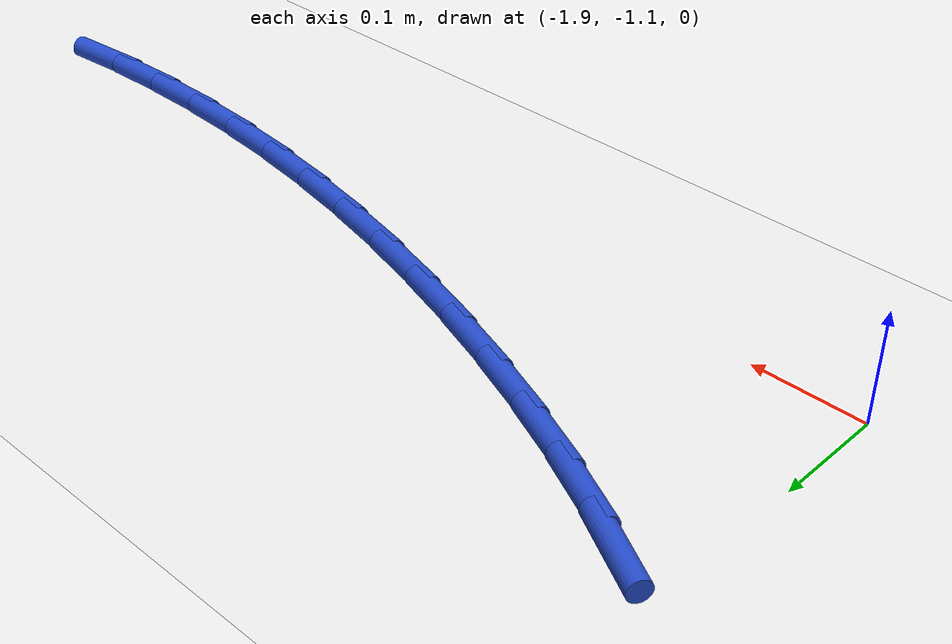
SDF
<sdf version="1.6">
 <world name="default">
  <model name="ground_plane">
   <static>1</static>
   <link name="link">
    <collision name="collision">
     <geometry><plane><normal>0 0 1</normal><size>100 100</size></plane></geometry>
     <surface><friction><ode><mu>100</mu><mu2>50</mu2></ode></friction></surface>
    </collision>
    <visual name="visual">
     <cast_shadows>0</cast_shadows>
     <geometry><plane><normal>0 0 1</normal><size>100 100</size></plane></geometry>
     <material>
      <script><uri>file://media/materials/scripts/gazebo.material</uri><name>Gazebo/WhiteGlow</name></script>
     </material>
    </visual>
   </link>
  </model>
  <model name="line">
   <link name="link_78">
    <pose>-1.8560114140258257 -0.8668475398187657 0.01 0 1.57 -0.5089625837110645</pose>
    <collision name="collision">
     <geometry><cylinder><radius>0.01</radius><length>0.08</length></cylinder></geometry>
    </collision>
    <visual name="visual">
     <material>
      <script><name>Gazebo/Blue</name><uri>file://media/materials/scripts/gazebo.material</uri></script>
     </material>
     <geometry><cylinder><radius>0.01</radius><length>0.08</length></cylinder></geometry>
    </visual>
   </link>
   <link name="link_79">
    <pose>-1.8049113757079878 -0.8953612334348058 0.01 0 1.57 -0.4563625777665876</pose>
    <collision name="collision">
     <geometry><cylinder><radius>0.01</radius><length>0.08</length></cylinder></geometry>
    </collision>
    <visual name="visual">
     <material>
      <script><name>Gazebo/Blue</name><uri>file://media/materials/scripts/gazebo.material</uri></script>
     </material>
     <geometry><cylinder><radius>0.01</radius><length>0.08</length></cylinder></geometry>
    </visual>
   </link>
   <link name="link_80">
    <pose>-1.7522824186661543 -0.9211981884001994 0.01 0 1.57 -0.40992676793087934</pose>
    <collision name="collision">
     <geometry><cylinder><radius>0.01</radius><length>0.08</length></cylinder></geometry>
    </collision>
    <visual name="visual">
     <material>
      <script><name>Gazebo/Blue</name><uri>file://media/materials/scripts/gazebo.material</uri></script>
     </material>
     <geometry><cylinder><radius>0.01</radius><length>0.08</length></cylinder></geometry>
    </visual>
   </link>
   <link name="link_81">
    <pose>-1.6983915308016853 -0.9446161579992518 0.01 0 1.57 -0.3694303202041057</pose>
    <collision name="collision">
     <geometry><cylinder><radius>0.01</radius><length>0.08</length></cylinder></geometry>
    </collision>
    <visual name="visual">
     <material>
      <script><name>Gazebo/Blue</name><uri>file://media/materials/scripts/gazebo.material</uri></script>
     </material>
     <geometry><cylinder><radius>0.01</radius><length>0.08</length></cylinder></geometry>
    </visual>
   </link>
   <link name="link_82">
    <pose>-1.6435038117593181 -0.965869117807244 0.01 0 1.57 -0.33199034544797357</pose>
    <collision name="collision">
     <geometry><cylinder><radius>0.01</radius><length>0.08</length></cylinder></geometry>
    </collision>
    <visual name="visual">
     <material>
      <script><name>Gazebo/Blue</name><uri>file://media/materials/scripts/gazebo.material</uri></script>
     </material>
     <geometry><cylinder><radius>0.01</radius><length>0.08</length></cylinder></geometry>
    </visual>
   </link>
   <link name="link_83">
    <pose>-1.5878131121656374 -0.9850685002432575 0.01 0 1.57 -0.29401201065530425</pose>
    <collision name="collision">
     <geometry><cylinder><radius>0.01</radius><length>0.08</length></cylinder></geometry>
    </collision>
    <visual name="visual">
     <material>
      <script><name>Gazebo/Blue</name><uri>file://media/materials/scripts/gazebo.material</uri></script>
     </material>
     <geometry><cylinder><radius>0.01</radius><length>0.08</length></cylinder></geometry>
    </visual>
   </link>
   <link name="link_84">
    <pose>-1.5314219565056675 -1.002143027609104 0.01 0 1.57 -0.2551519863277536</pose>
    <collision name="collision">
     <geometry><cylinder><radius>0.01</radius><length>0.08</length></cylinder></geometry>
    </collision>
    <visual name="visual">
     <material>
      <script><name>Gazebo/Blue</name><uri>file://media/materials/scripts/gazebo.material</uri></script>
     </material>
     <geometry><cylinder><radius>0.01</radius><length>0.08</length></cylinder></geometry>
    </visual>
   </link>
   <link name="link_85">
    <pose>-1.474426887845713 -1.0170094555813034 0.01 0 1.57 -0.2152983802755524</pose>
    <collision name="collision">
     <geometry><cylinder><radius>0.01</radius><length>0.08</length></cylinder></geometry>
    </collision>
    <visual name="visual">
     <material>
      <script><name>Gazebo/Blue</name><uri>file://media/materials/scripts/gazebo.material</uri></script>
     </material>
     <geometry><cylinder><radius>0.01</radius><length>0.08</length></cylinder></geometry>
    </visual>
   </link>
   <link name="link_86">
    <pose>-1.4169244492520818 -1.0295845398363768 0.01 0 1.57 -0.1743457760830197</pose>
    <collision name="collision">
     <geometry><cylinder><radius>0.01</radius><length>0.08</length></cylinder></geometry>
    </collision>
    <visual name="visual">
     <material>
      <script><name>Gazebo/Blue</name><uri>file://media/materials/scripts/gazebo.material</uri></script>
     </material>
     <geometry><cylinder><radius>0.01</radius><length>0.08</length></cylinder></geometry>
    </visual>
   </link>
   <link name="link_87">
    <pose>-1.3590111837910799 -1.039785036050844 0.01 0 1.57 -0.1321970028069997</pose>
    <collision name="collision">
     <geometry><cylinder><radius>0.01</radius><length>0.08</length></cylinder></geometry>
    </collision>
    <visual name="visual">
     <material>
      <script><name>Gazebo/Blue</name><uri>file://media/materials/scripts/gazebo.material</uri></script>
     </material>
     <geometry><cylinder><radius>0.01</radius><length>0.08</length></cylinder></geometry>
    </visual>
   </link>
   <link name="link_88">
    <pose>-1.300783634529012 -1.0475276999012262 0.01 0 1.57 -0.0887653799347172</pose>
    <collision name="collision">
     <geometry><cylinder><radius>0.01</radius><length>0.08</length></cylinder></geometry>
    </collision>
    <visual name="visual">
     <material>
      <script><name>Gazebo/Blue</name><uri>file://media/materials/scripts/gazebo.material</uri></script>
     </material>
     <geometry><cylinder><radius>0.01</radius><length>0.08</length></cylinder></geometry>
    </visual>
   </link>
   <link name="link_89">
    <pose>-1.2423383445321843 -1.0527292870640432 0.01 0 1.57 -0.043977444255262954</pose>
    <collision name="collision">
     <geometry><cylinder><radius>0.01</radius><length>0.08</length></cylinder></geometry>
    </collision>
    <visual name="visual">
     <material>
      <script><name>Gazebo/Blue</name><uri>file://media/materials/scripts/gazebo.material</uri></script>
     </material>
     <geometry><cylinder><radius>0.01</radius><length>0.08</length></cylinder></geometry>
    </visual>
   </link>
   <link name="link_90">
    <pose>-1.1837718568669042 -1.0553065532158161 0.01 0 1.57 0.0022238680269205786</pose>
    <collision name="collision">
     <geometry><cylinder><radius>0.01</radius><length>0.08</length></cylinder></geometry>
    </collision>
    <visual name="visual">
     <material>
      <script><name>Gazebo/Blue</name><uri>file://media/materials/scripts/gazebo.material</uri></script>
     </material>
     <geometry><cylinder><radius>0.01</radius><length>0.08</length></cylinder></geometry>
    </visual>
   </link>
   <link name="link_91">
    <pose>-1.125180714599477 -1.0551762540330647 0.01 0 1.57 0.049875657738286686</pose>
    <collision name="collision">
     <geometry><cylinder><radius>0.01</radius><length>0.08</length></cylinder></geometry>
    </collision>
    <visual name="visual">
     <material>
      <script><name>Gazebo/Blue</name><uri>file://media/materials/scripts/gazebo.material</uri></script>
     </material>
     <geometry><cylinder><radius>0.01</radius><length>0.08</length></cylinder></geometry>
    </visual>
   </link>
   <link name="link_92">
    <pose>-1.066661460796209 -1.05225514519231 0.01 0 1.57 0.098749335051671</pose>
    <collision name="collision">
     <geometry><cylinder><radius>0.01</radius><length>0.08</length></cylinder></geometry>
    </collision>
    <visual name="visual">
     <material>
      <script><name>Gazebo/Blue</name><uri>file://media/materials/scripts/gazebo.material</uri></script>
     </material>
     <geometry><cylinder><radius>0.01</radius><length>0.08</length></cylinder></geometry>
    </visual>
   </link>
  </model>
 </world>
</sdf>
